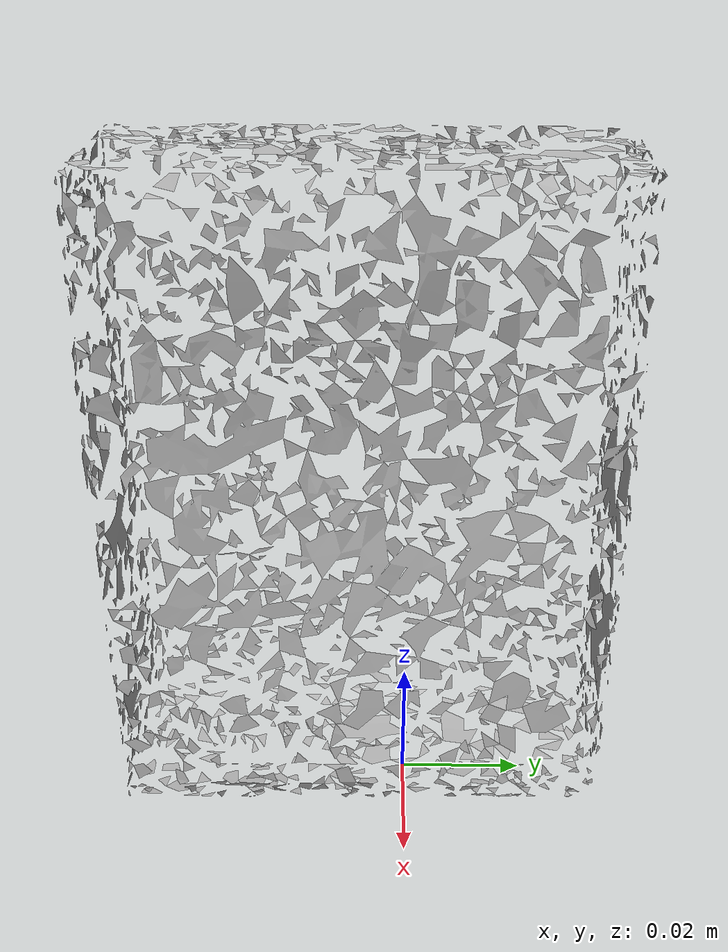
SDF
<?xml version='1.0'?>
  <sdf version="1.6">
    <model name="cracker_box">
      <pose frame=''>0 0 0 0 0 0</pose>
      <static>false</static>

      <link name="cracker_link">
        <pose>0 0 0 0 0 0</pose>
          <inertial>
            <pose frame=''>-0.01485355781018036 -0.01020505447388014 0.05220486833098277 3.133592366386321 0.010946297886107008 3.140976285001705</pose>
            <mass>0.0021732875685518717</mass>
            <inertia>
              <ixx>1</ixx>
              <ixy>0</ixy>
              <ixz>0</ixz>
              <iyy>1</iyy>
              <iyz>0</iyz>
              <izz>1</izz>
            </inertia>
          </inertial>

          <collision name="cracker_collision">
            <pose frame=''>0 0 0 0 0 0</pose>
            <geometry>
              <mesh>
                <!-- Use a downsampled mesh for collisions -->
                <uri>model://003_cracker_box/downsampled.obj</uri>
                <scale>0.5 0.5 0.5</scale>
              </mesh>
            </geometry>
            <surface>
            </surface>
          </collision>

          <visual name="cracker_visual">
            <pose frame=''>0 0 0 0 0 0</pose>
            <geometry>
              <mesh>
                <uri>model://003_cracker_box/google_16k/textured.obj</uri>
                <scale>0.5 0.5 0.5</scale>
              </mesh>
            </geometry>
            <material>
              <script>
                <uri>model://003_cracker_box/cracker_box.material</uri>
                <name>cracker_box</name>
              </script>
            </material>
          </visual>
      </link>
    </model>
  </sdf>
